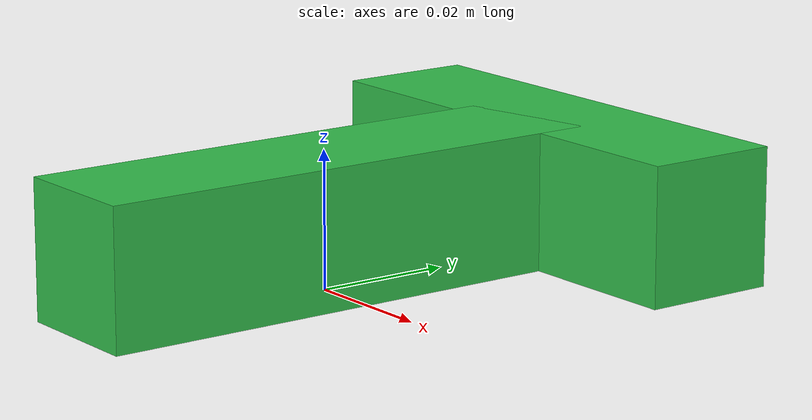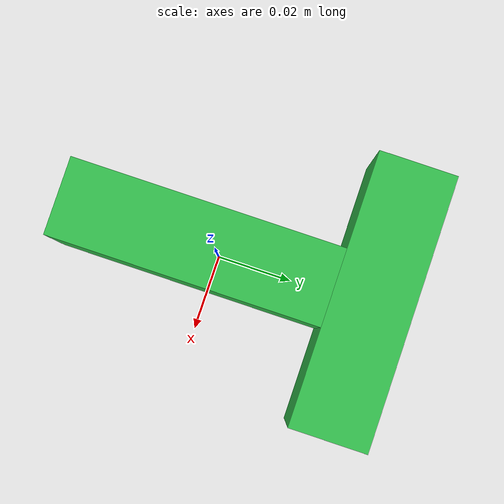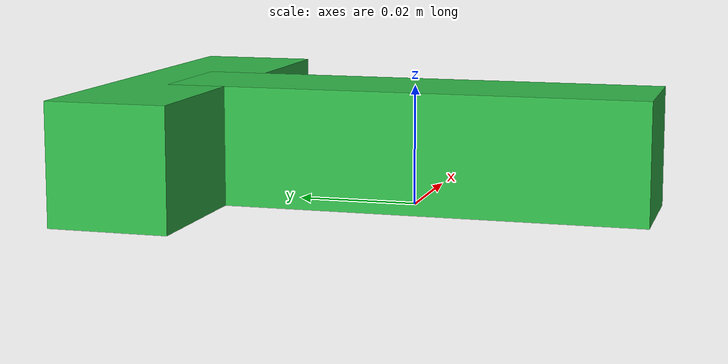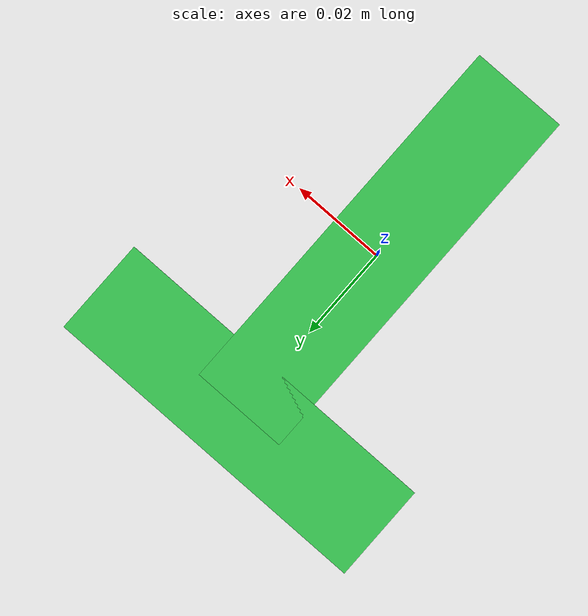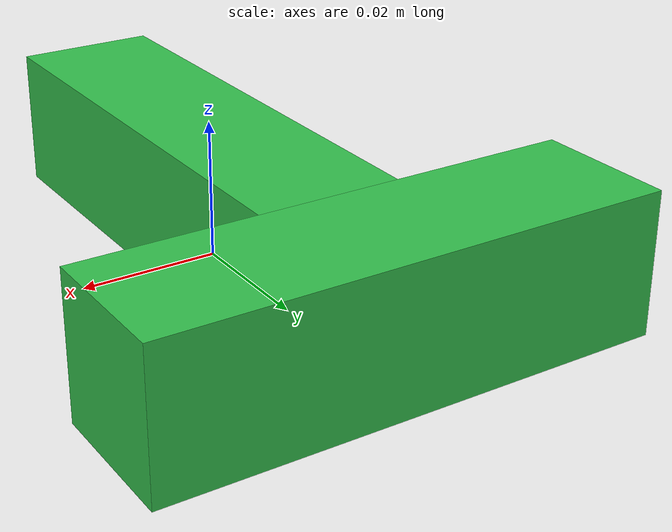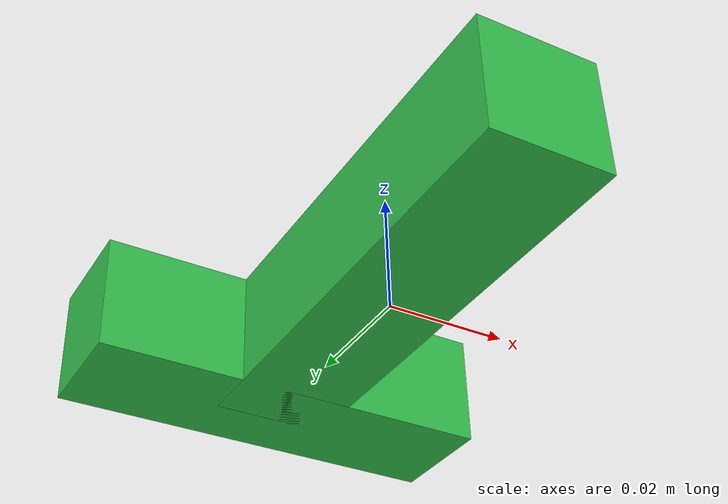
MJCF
<!--
  T 形物体 MJCF — Push-T 任务
  由 3 个 box geom 组成 T 形: 横梁 + 竖梁, 绿色
  整体尺寸: 横梁 0.08m x 0.02m, 竖梁 0.02m x 0.06m, 高 0.02m
-->
<mujoco model="t_shape">
  <compiler angle="radian"/>
  <worldbody>
    <body name="t_shape" pos="0 0 0.01">
      <freejoint name="t_shape_joint"/>
      <inertial mass="0.08" diaginertia="5e-5 3e-5 8e-5" pos="0 0 0"/>
      <!-- 竖梁 (沿 x 轴) -->
      <geom name="t_stem" type="box" size="0.01 0.04 0.01" pos="0 0 0" rgba="0.2 0.75 0.3 1" friction="0.5 0.4 0.2"/>
      <!-- 横梁 (沿 y 轴) -->
      <geom name="t_cross" type="box" size="0.035 0.01 0.01" pos="0 0.04 0" rgba="0.2 0.75 0.3 1" friction="0.5 0.4 0.2"/>
      <!-- T 中心 marker -->
      <site name="t_center" pos="0 0 0" size="0.005"/>
    </body>
  </worldbody>
</mujoco>
